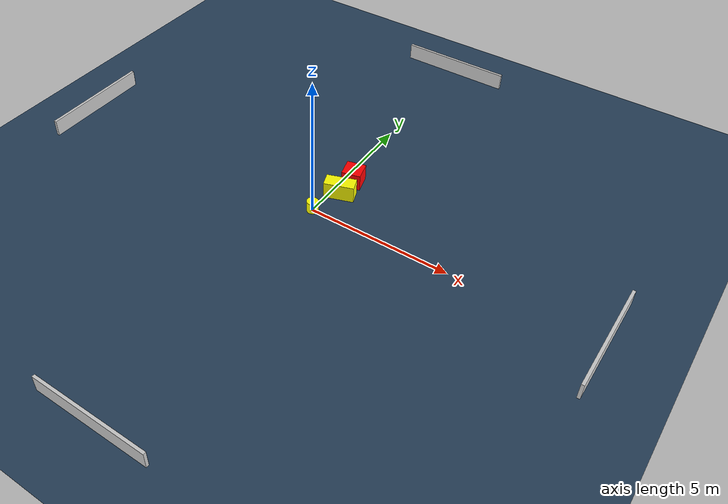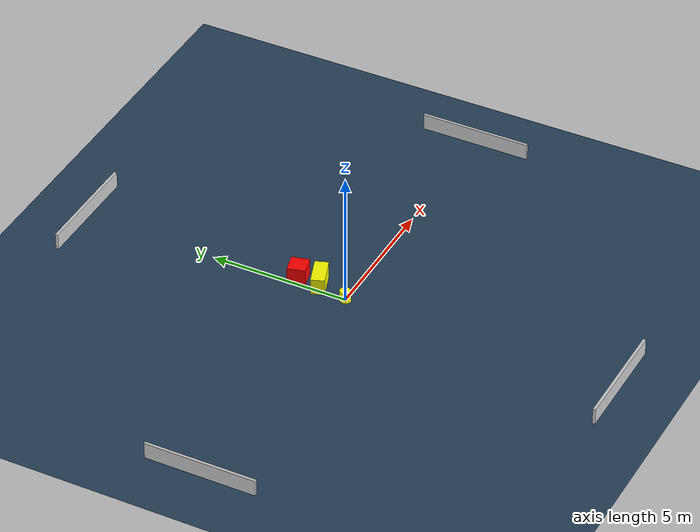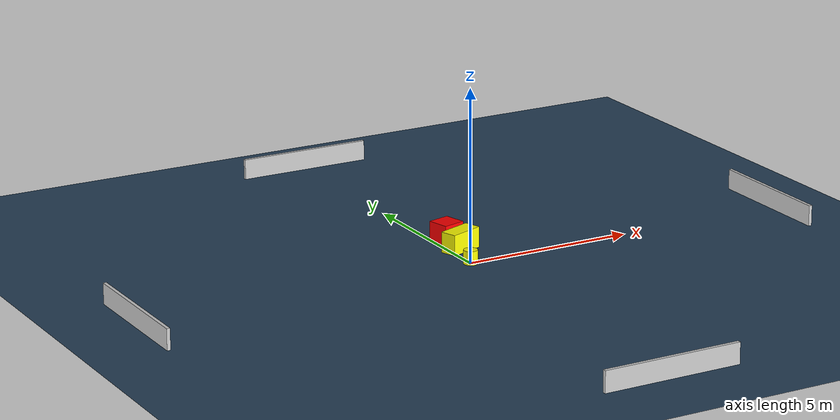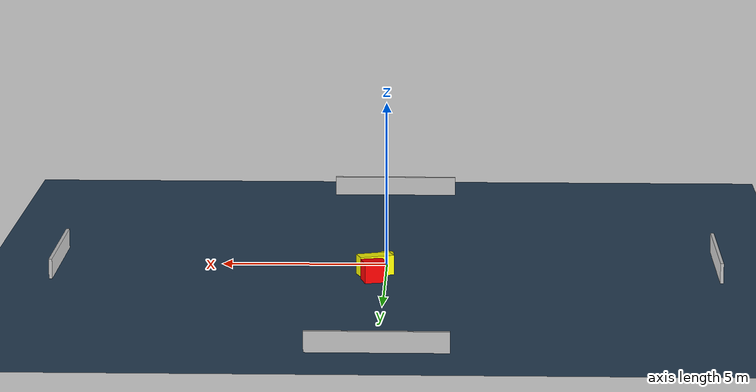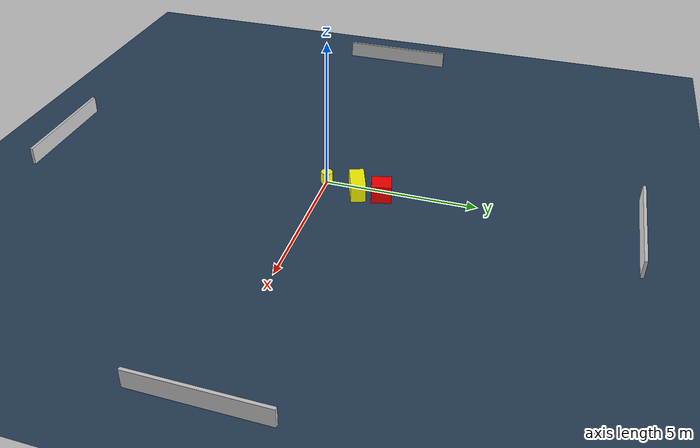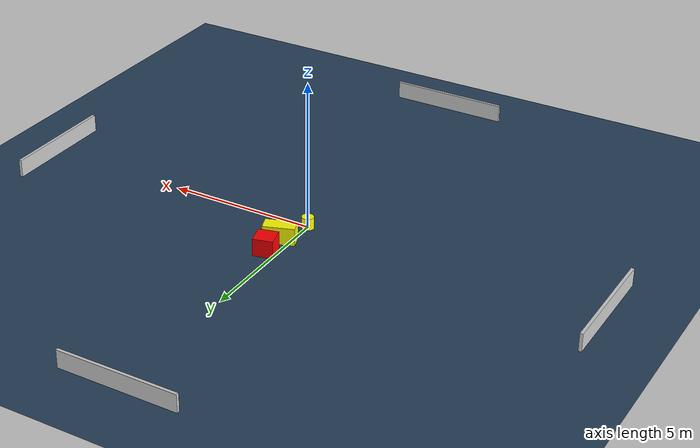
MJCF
<?xml version="1.0" ?>
<mujoco model="generated_environment">
  <option timestep="0.01" integrator="RK4" cone="elliptic"/>
  <default>
    <geom density="1"/>
  </default>
  <asset>
    <texture builtin="gradient" height="3072" name="skybox" rgb1="0.3 0.5 0.7" rgb2="0 0 0" type="skybox" width="512"/>
    <texture builtin="checker" height="300" name="groundplane" rgb1="0.2 0.3 0.4" rgb2="0.1 0.2 0.3" type="2d" width="300"/>
    <material name="groundplane" reflectance="0.2" texrepeat="5 5" texture="groundplane"/>
  </asset>
  <worldbody>
    <light dir="0 0 -1" directional="true" pos="0 0 1.5"/>
    <geom condim="3" friction="0.5 0.005 0.001" material="groundplane" name="floor" pos="0 0 0" size="0 0 0.05" type="plane"/>
    <body name="walls">
      <geom name="wall_1" condim="4" pos="-10.0 0.0 0.3" rgba="0.800000011920929 0.800000011920929 0.800000011920929 1.0" size="0.05 2.0 0.3" type="box"/>
      <geom name="wall_2" condim="4" pos="10.0 0.0 0.3" rgba="0.800000011920929 0.800000011920929 0.800000011920929 1.0" size="0.05 2.0 0.3" type="box"/>
      <geom name="wall_3" condim="4" pos="0.0 -10.0 0.3" rgba="0.800000011920929 0.800000011920929 0.800000011920929 1.0" size="2.0 0.05 0.3" type="box"/>
      <geom name="wall_4" condim="4" pos="0.0 10.0 0.3" rgba="0.800000011920929 0.800000011920929 0.800000011920929 1.0" size="2.0 0.05 0.3" type="box"/>
    </body>
    <body name="robot">
      <joint name="joint_x" type="slide" pos="0 0 0" axis="1 0 0"/>
      <joint name="joint_y" type="slide" pos="0 0 0" axis="0 1 0"/>
      <geom name="robot" type="cylinder" pos="0.0 0.0 0.2" size="0.2 0.2 0.0" mass="5.0" friction="1.0 0.005 0.0001" condim="4" rgba="1.0 1.0 0.0 1.0"/>
    </body>
    <body name="obstacle_1_movable">
      <geom name="obstacle_1_movable" condim="4" pos="0.33077051664899476 1.142160931501884 0.3" euler="0 0 109.48046856886347" friction="0.0 0.005 0.001" rgba="1.0 1.0 0.0 1.0" size="0.2436133611707371 0.5199405980770693 0.3" type="box" mass="0.1"/>
      <joint type="free"/>
    </body>
    <body name="obstacle_2_static">
      <geom name="obstacle_2_static" condim="4" pos="0.34531834756383617 1.9547993178255678 0.3" euler="0 0 14.232116377843514" friction="0.0 0.005 0.001" rgba="1.0 0.0 0.0 1.0" size="0.33160191669843986 0.3235651863929687 0.3" type="box"/>
    </body>
  </worldbody>
  <actuator>
    <motor name="actuator_x" joint="joint_x" gear="1" ctrlrange="-1 1"/>
    <motor name="actuator_y" joint="joint_y" gear="1" ctrlrange="-1 1"/>
  </actuator>
</mujoco>
